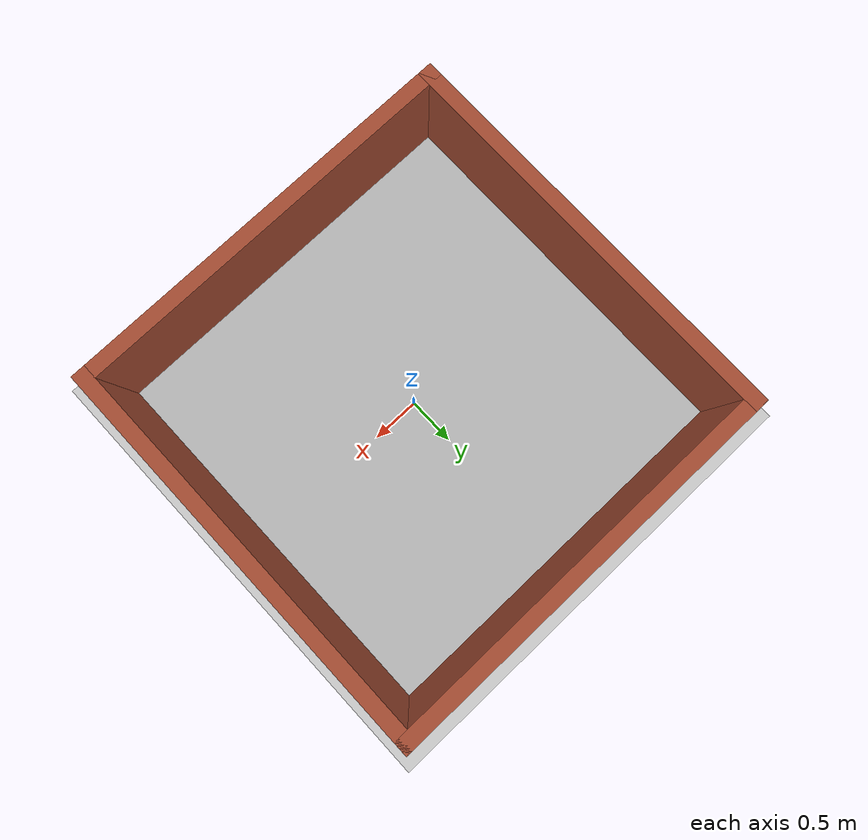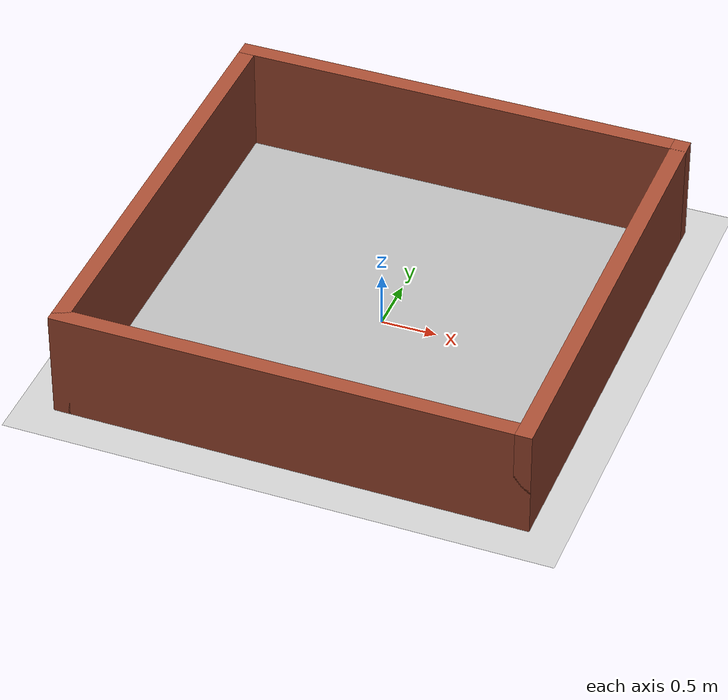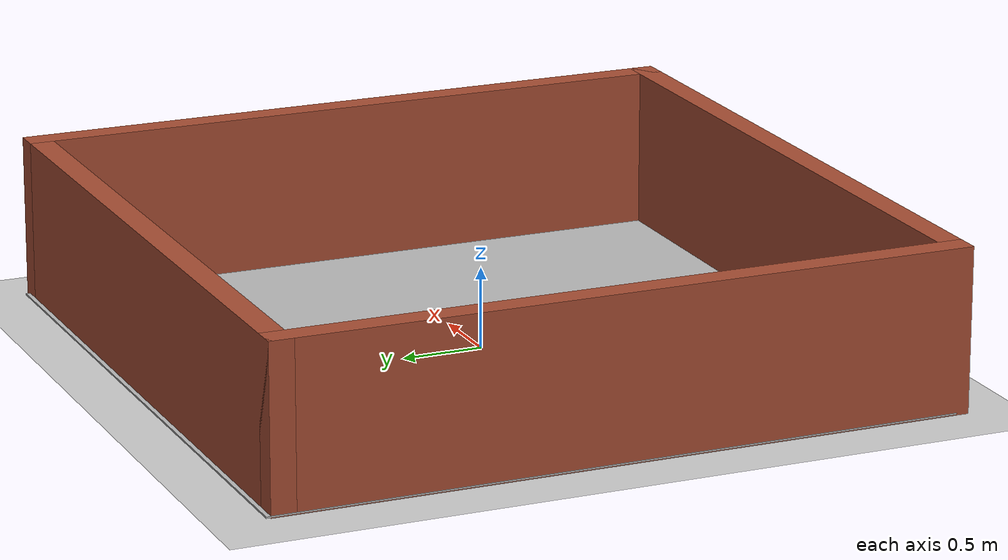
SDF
<sdf version="1.7">
 <world name="default">
  <light name="sun" type="directional">
   <pose>0 0 10 0 -0 0</pose>
   <diffuse>0.8 0.8 0.8 1</diffuse>
   <specular>0.2 0.2 0.2 1</specular>
   <attenuation>
    <range>1000</range>
    <constant>0.9</constant>
    <linear>0.01</linear>
    <quadratic>0.001</quadratic>
   </attenuation>
   <direction>-0.5 0.1 -0.9</direction>
   <spot><inner_angle>0</inner_angle><outer_angle>0</outer_angle><falloff>0</falloff></spot>
  </light>
  <light name="side_light" type="point">
   <pose>0.26 0.66 1 0 0 0</pose>
   <diffuse>1.0 1.0 1.0 1</diffuse>
   <range>5.0</range>
   <attenuation><linear>0</linear><quadratic>0</quadratic></attenuation>
  </light>
  <model name="ground_plane">
   <static>1</static>
   <link name="link">
    <collision name="collision">
     <geometry><plane><normal>0 0 1</normal><size>100 100</size></plane></geometry>
     <surface><friction><ode><mu>100</mu><mu2>50</mu2></ode></friction></surface>
    </collision>
    <visual name="visual">
     <cast_shadows>0</cast_shadows>
     <geometry><plane><normal>0 0 1</normal><size>100 100</size></plane></geometry>
     <material>
      <script><uri>file://media/materials/scripts/gazebo.material</uri><name>Gazebo/Grey</name></script>
     </material>
    </visual>
   </link>
  </model>
  <gravity>0 0 -9.8</gravity>
  <magnetic_field>6e-06 2.3e-05 -4.2e-05</magnetic_field>
  <atmosphere type="adiabatic"/>
  <physics type="ode">
   <max_step_size>0.001</max_step_size>
   <real_time_factor>1</real_time_factor>
   <real_time_update_rate>1000</real_time_update_rate>
  </physics>
  <scene><ambient>0.4 0.4 0.4 1</ambient><background>0.7 0.7 0.7 1</background><shadows>1</shadows></scene>
  <spherical_coordinates>
   <surface_model>EARTH_WGS84</surface_model>
   <latitude_deg>0</latitude_deg>
   <longitude_deg>0</longitude_deg>
   <elevation>0</elevation>
   <heading_deg>0</heading_deg>
  </spherical_coordinates>
  <model name="wall">
   <pose>-0.04 0.03 0 0 -0 0</pose>
   <link name="Wall_0">
    <collision name="Wall_0_Collision">
     <geometry><box><size>4.25 0.15 1</size></box></geometry>
     <pose>0 0 0.5 0 -0 0</pose>
    </collision>
    <visual name="Wall_0_Visual">
     <pose>0 0 0.5 0 -0 0</pose>
     <geometry><box><size>4.25 0.15 1</size></box></geometry>
     <material>
      <script><uri>file://media/materials/scripts/gazebo.material</uri><name>Gazebo/Bricks</name></script>
      <ambient>1 1 1 1</ambient>
     </material>
     <meta><layer>0</layer></meta>
    </visual>
    <pose>-2.05 0 0 0 -0 -1.5708</pose>
   </link>
   <link name="Wall_1">
    <collision name="Wall_1_Collision">
     <geometry><box><size>4.25 0.15 1</size></box></geometry>
     <pose>0 0 0.5 0 -0 0</pose>
    </collision>
    <visual name="Wall_1_Visual">
     <pose>0 0 0.5 0 -0 0</pose>
     <geometry><box><size>4.25 0.15 1</size></box></geometry>
     <material>
      <script><uri>file://media/materials/scripts/gazebo.material</uri><name>Gazebo/Bricks</name></script>
      <ambient>1 1 1 1</ambient>
     </material>
     <meta><layer>0</layer></meta>
    </visual>
    <pose>-0 -2.05 0 0 -0 0</pose>
   </link>
   <link name="Wall_10">
    <collision name="Wall_10_Collision">
     <geometry><box><size>4.25 0.15 1</size></box></geometry>
     <pose>0 0 0.5 0 -0 0</pose>
    </collision>
    <visual name="Wall_10_Visual">
     <pose>0 0 0.5 0 -0 0</pose>
     <geometry><box><size>4.25 0.15 1</size></box></geometry>
     <material>
      <script><uri>file://media/materials/scripts/gazebo.material</uri><name>Gazebo/Bricks</name></script>
      <ambient>1 1 1 1</ambient>
     </material>
     <meta><layer>0</layer></meta>
    </visual>
    <pose>-0 2.05 0 0 -0 0</pose>
   </link>
   <link name="Wall_2">
    <collision name="Wall_2_Collision">
     <geometry><box><size>4.25 0.15 1</size></box></geometry>
     <pose>0 0 0.5 0 -0 0</pose>
    </collision>
    <visual name="Wall_2_Visual">
     <pose>0 0 0.5 0 -0 0</pose>
     <geometry><box><size>4.25 0.15 1</size></box></geometry>
     <material>
      <script><uri>file://media/materials/scripts/gazebo.material</uri><name>Gazebo/Bricks</name></script>
      <ambient>1 1 1 1</ambient>
     </material>
     <meta><layer>0</layer></meta>
    </visual>
    <pose>2.05 0 0 0 -0 1.5708</pose>
   </link>
   <static>1</static>
  </model>
  <model name="map">
   <pose>-0.066779 0.082345 0.01 0 -0 0</pose>
   <static>1</static>
   <link name="link">
    <inertial>
     <mass>0.5</mass>
     <inertia><ixx>0.001</ixx><ixy>0</ixy><ixz>0</ixz><iyy>0.001</iyy><iyz>0</iyz><izz>0.001</izz></inertia>
    </inertial>
    <collision name="collision">
     <geometry><box><size>4.2 4.2 0.01</size></box></geometry>
     <max_contacts>100</max_contacts>
    </collision>
    <visual name="visual">
     <cast_shadows>0</cast_shadows>
     <geometry><box><size>4.2 4.2 0.01</size></box></geometry>
     <material>
      <script>
       <uri>model://map/materials/scripts</uri>
       <uri>model://map/materials/textures</uri>
       <name>MyGround/map</name>
      </script>
     </material>
    </visual>
   </link>
  </model>
 </world>
</sdf>
